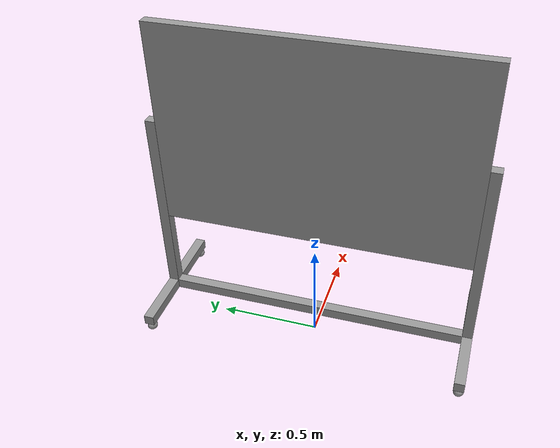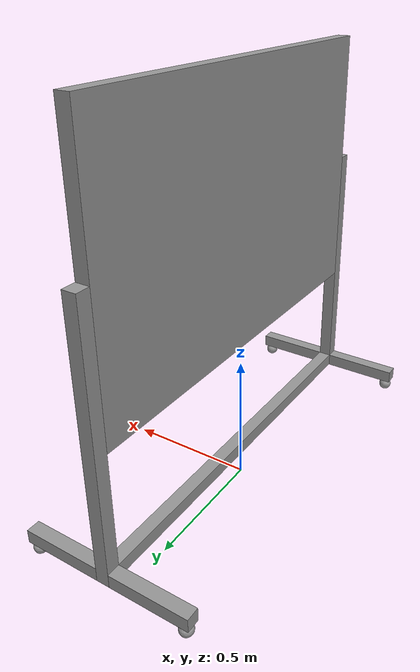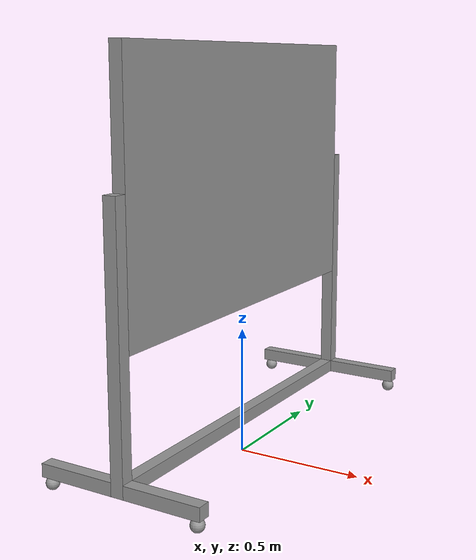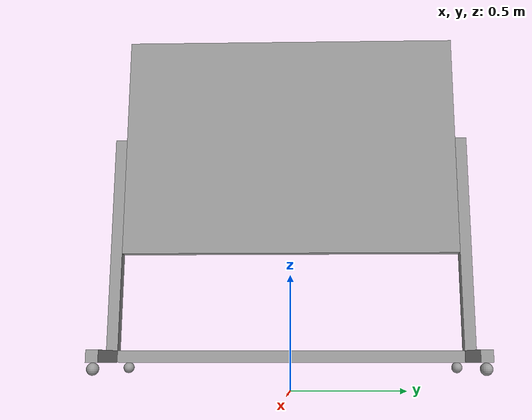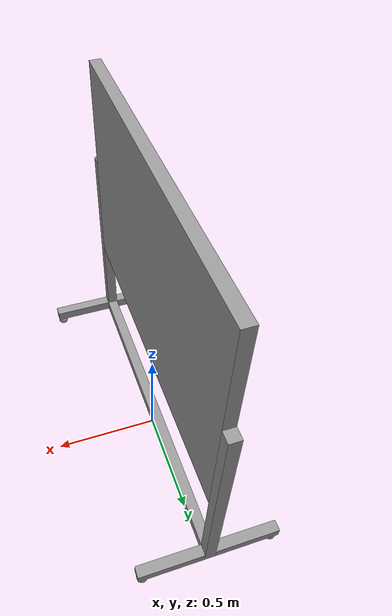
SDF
<?xml version='1.0'?>
<sdf version='1.6'>
  <model name='whiteboardV2'>
    <link name='link_0'>
      <pose frame=''>0 0 1.09583 0 -0 0</pose>
      <inertial>
        <mass>1</mass>
        <inertia>
          <ixx>0.166667</ixx>
          <ixy>0</ixy>
          <ixz>0</ixz>
          <iyy>0.166667</iyy>
          <iyz>0</iyz>
          <izz>0.166667</izz>
        </inertia>
        <pose frame=''>0 0 0 0 -0 0</pose>
      </inertial>
      <gravity>1</gravity>
      <self_collide>0</self_collide>
      <kinematic>0</kinematic>
      <visual name='visual'>
        <pose frame=''>0 0 0 0 -0 0</pose>
        <geometry>
          <box>
            <size>0.05 1.5 1</size>
          </box>
        </geometry>
        <material>
          <lighting>1</lighting>
          <script>
            <uri>file://media/materials/scripts/gazebo.material</uri>
            <name>Gazebo/Grey</name>
          </script>
          <ambient>0.3 0.3 0.3 1</ambient>
          <diffuse>0.7 0.7 0.7 1</diffuse>
          <specular>0.01 0.01 0.01 1</specular>
          <emissive>0 0 0 1</emissive>
          <shader type='vertex'>
            <normal_map>__default__</normal_map>
          </shader>
        </material>
        <cast_shadows>1</cast_shadows>
        <transparency>0</transparency>
      </visual>
      <collision name='collision'>
        <laser_retro>0</laser_retro>
        <max_contacts>10</max_contacts>
        <pose frame=''>0 0 0 0 -0 0</pose>
        <geometry>
          <box>
            <size>0.05 1.5 1</size>
          </box>
        </geometry>
        <surface>
          <friction>
            <ode>
              <mu>1</mu>
              <mu2>1</mu2>
              <fdir1>0 0 0</fdir1>
              <slip1>0</slip1>
              <slip2>0</slip2>
            </ode>
            <torsional>
              <coefficient>1</coefficient>
              <patch_radius>0</patch_radius>
              <surface_radius>0</surface_radius>
              <use_patch_radius>1</use_patch_radius>
              <ode>
                <slip>0</slip>
              </ode>
            </torsional>
          </friction>
          <bounce>
            <restitution_coefficient>0</restitution_coefficient>
            <threshold>1e+06</threshold>
          </bounce>
          <contact>
            <collide_without_contact>0</collide_without_contact>
            <collide_without_contact_bitmask>1</collide_without_contact_bitmask>
            <collide_bitmask>1</collide_bitmask>
            <ode>
              <soft_cfm>0</soft_cfm>
              <soft_erp>0.2</soft_erp>
              <kp>1e+13</kp>
              <kd>1</kd>
              <max_vel>0.01</max_vel>
              <min_depth>0</min_depth>
            </ode>
            <bullet>
              <split_impulse>1</split_impulse>
              <split_impulse_penetration_threshold>-0.01</split_impulse_penetration_threshold>
              <soft_cfm>0</soft_cfm>
              <soft_erp>0.2</soft_erp>
              <kp>1e+13</kp>
              <kd>1</kd>
            </bullet>
          </contact>
        </surface>
      </collision>
    </link>
    <link name='link_1'>
      <pose frame=''>0 0 0.145833 0 -0 0</pose>
      <inertial>
        <mass>1</mass>
        <inertia>
          <ixx>0.166667</ixx>
          <ixy>0</ixy>
          <ixz>0</ixz>
          <iyy>0.166667</iyy>
          <iyz>0</iyz>
          <izz>0.166667</izz>
        </inertia>
        <pose frame=''>0 0 0 0 -0 0</pose>
      </inertial>
      <gravity>1</gravity>
      <self_collide>0</self_collide>
      <kinematic>0</kinematic>
      <visual name='visual'>
        <pose frame=''>0 0 0 0 -0 0</pose>
        <geometry>
          <box>
            <size>0.05 1.5 0.05</size>
          </box>
        </geometry>
        <material>
          <lighting>1</lighting>
          <script>
            <uri>file://media/materials/scripts/gazebo.material</uri>
            <name>Gazebo/Grey</name>
          </script>
          <ambient>0.3 0.3 0.3 1</ambient>
          <diffuse>0.7 0.7 0.7 1</diffuse>
          <specular>0.01 0.01 0.01 1</specular>
          <emissive>0 0 0 1</emissive>
          <shader type='vertex'>
            <normal_map>__default__</normal_map>
          </shader>
        </material>
        <cast_shadows>1</cast_shadows>
        <transparency>0</transparency>
      </visual>
      <collision name='collision'>
        <laser_retro>0</laser_retro>
        <max_contacts>10</max_contacts>
        <pose frame=''>0 0 0 0 -0 0</pose>
        <geometry>
          <box>
            <size>0.05 1.5 0.05</size>
          </box>
        </geometry>
        <surface>
          <friction>
            <ode>
              <mu>1</mu>
              <mu2>1</mu2>
              <fdir1>0 0 0</fdir1>
              <slip1>0</slip1>
              <slip2>0</slip2>
            </ode>
            <torsional>
              <coefficient>1</coefficient>
              <patch_radius>0</patch_radius>
              <surface_radius>0</surface_radius>
              <use_patch_radius>1</use_patch_radius>
              <ode>
                <slip>0</slip>
              </ode>
            </torsional>
          </friction>
          <bounce>
            <restitution_coefficient>0</restitution_coefficient>
            <threshold>1e+06</threshold>
          </bounce>
          <contact>
            <collide_without_contact>0</collide_without_contact>
            <collide_without_contact_bitmask>1</collide_without_contact_bitmask>
            <collide_bitmask>1</collide_bitmask>
            <ode>
              <soft_cfm>0</soft_cfm>
              <soft_erp>0.2</soft_erp>
              <kp>1e+13</kp>
              <kd>1</kd>
              <max_vel>0.01</max_vel>
              <min_depth>0</min_depth>
            </ode>
            <bullet>
              <split_impulse>1</split_impulse>
              <split_impulse_penetration_threshold>-0.01</split_impulse_penetration_threshold>
              <soft_cfm>0</soft_cfm>
              <soft_erp>0.2</soft_erp>
              <kp>1e+13</kp>
              <kd>1</kd>
            </bullet>
          </contact>
        </surface>
      </collision>
    </link>
    <link name='link_2'>
      <pose frame=''>-0.175 -0.775 0.145833 0 -0 0</pose>
      <inertial>
        <mass>1</mass>
        <inertia>
          <ixx>0.166667</ixx>
          <ixy>0</ixy>
          <ixz>0</ixz>
          <iyy>0.166667</iyy>
          <iyz>0</iyz>
          <izz>0.166667</izz>
        </inertia>
        <pose frame=''>0 0 0 0 -0 0</pose>
      </inertial>
      <gravity>1</gravity>
      <self_collide>0</self_collide>
      <kinematic>0</kinematic>
      <visual name='visual'>
        <pose frame=''>0 0 0 0 -0 0</pose>
        <geometry>
          <box>
            <size>0.3 0.05 0.05</size>
          </box>
        </geometry>
        <material>
          <lighting>1</lighting>
          <script>
            <uri>file://media/materials/scripts/gazebo.material</uri>
            <name>Gazebo/Grey</name>
          </script>
          <ambient>0.3 0.3 0.3 1</ambient>
          <diffuse>0.7 0.7 0.7 1</diffuse>
          <specular>0.01 0.01 0.01 1</specular>
          <emissive>0 0 0 1</emissive>
          <shader type='vertex'>
            <normal_map>__default__</normal_map>
          </shader>
        </material>
        <cast_shadows>1</cast_shadows>
        <transparency>0</transparency>
      </visual>
      <collision name='collision'>
        <laser_retro>0</laser_retro>
        <max_contacts>10</max_contacts>
        <pose frame=''>0 0 0 0 -0 0</pose>
        <geometry>
          <box>
            <size>0.3 0.05 0.05</size>
          </box>
        </geometry>
        <surface>
          <friction>
            <ode>
              <mu>1</mu>
              <mu2>1</mu2>
              <fdir1>0 0 0</fdir1>
              <slip1>0</slip1>
              <slip2>0</slip2>
            </ode>
            <torsional>
              <coefficient>1</coefficient>
              <patch_radius>0</patch_radius>
              <surface_radius>0</surface_radius>
              <use_patch_radius>1</use_patch_radius>
              <ode>
                <slip>0</slip>
              </ode>
            </torsional>
          </friction>
          <bounce>
            <restitution_coefficient>0</restitution_coefficient>
            <threshold>1e+06</threshold>
          </bounce>
          <contact>
            <collide_without_contact>0</collide_without_contact>
            <collide_without_contact_bitmask>1</collide_without_contact_bitmask>
            <collide_bitmask>1</collide_bitmask>
            <ode>
              <soft_cfm>0</soft_cfm>
              <soft_erp>0.2</soft_erp>
              <kp>1e+13</kp>
              <kd>1</kd>
              <max_vel>0.01</max_vel>
              <min_depth>0</min_depth>
            </ode>
            <bullet>
              <split_impulse>1</split_impulse>
              <split_impulse_penetration_threshold>-0.01</split_impulse_penetration_threshold>
              <soft_cfm>0</soft_cfm>
              <soft_erp>0.2</soft_erp>
              <kp>1e+13</kp>
              <kd>1</kd>
            </bullet>
          </contact>
        </surface>
      </collision>
    </link>
    <link name='link_2_clone'>
      <pose frame=''>0.175 0.775 0.145833 0 -0 0</pose>
      <inertial>
        <mass>1</mass>
        <inertia>
          <ixx>0.166667</ixx>
          <ixy>0</ixy>
          <ixz>0</ixz>
          <iyy>0.166667</iyy>
          <iyz>0</iyz>
          <izz>0.166667</izz>
        </inertia>
        <pose frame=''>0 0 0 0 -0 0</pose>
      </inertial>
      <self_collide>0</self_collide>
      <kinematic>0</kinematic>
      <gravity>1</gravity>
      <visual name='visual'>
        <pose frame=''>0 0 0 0 -0 0</pose>
        <geometry>
          <box>
            <size>0.3 0.05 0.05</size>
          </box>
        </geometry>
        <material>
          <lighting>1</lighting>
          <script>
            <uri>file://media/materials/scripts/gazebo.material</uri>
            <name>Gazebo/Grey</name>
          </script>
          <ambient>0.3 0.3 0.3 1</ambient>
          <diffuse>0.7 0.7 0.7 1</diffuse>
          <specular>0.01 0.01 0.01 1</specular>
          <emissive>0 0 0 1</emissive>
          <shader type='vertex'>
            <normal_map>__default__</normal_map>
          </shader>
        </material>
        <cast_shadows>1</cast_shadows>
        <transparency>0</transparency>
      </visual>
      <collision name='collision'>
        <laser_retro>0</laser_retro>
        <max_contacts>10</max_contacts>
        <pose frame=''>0 0 0 0 -0 0</pose>
        <geometry>
          <box>
            <size>0.3 0.05 0.05</size>
          </box>
        </geometry>
        <surface>
          <friction>
            <ode>
              <mu>1</mu>
              <mu2>1</mu2>
              <fdir1>0 0 0</fdir1>
              <slip1>0</slip1>
              <slip2>0</slip2>
            </ode>
            <torsional>
              <coefficient>1</coefficient>
              <patch_radius>0</patch_radius>
              <surface_radius>0</surface_radius>
              <use_patch_radius>1</use_patch_radius>
              <ode>
                <slip>0</slip>
              </ode>
            </torsional>
          </friction>
          <bounce>
            <restitution_coefficient>0</restitution_coefficient>
            <threshold>1e+06</threshold>
          </bounce>
          <contact>
            <collide_without_contact>0</collide_without_contact>
            <collide_without_contact_bitmask>1</collide_without_contact_bitmask>
            <collide_bitmask>1</collide_bitmask>
            <ode>
              <soft_cfm>0</soft_cfm>
              <soft_erp>0.2</soft_erp>
              <kp>1e+13</kp>
              <kd>1</kd>
              <max_vel>0.01</max_vel>
              <min_depth>0</min_depth>
            </ode>
            <bullet>
              <split_impulse>1</split_impulse>
              <split_impulse_penetration_threshold>-0.01</split_impulse_penetration_threshold>
              <soft_cfm>0</soft_cfm>
              <soft_erp>0.2</soft_erp>
              <kp>1e+13</kp>
              <kd>1</kd>
            </bullet>
          </contact>
        </surface>
      </collision>
    </link>
    <link name='link_2_clone_clone'>
      <pose frame=''>0.175 -0.775 0.145833 0 -0 0</pose>
      <inertial>
        <mass>1</mass>
        <inertia>
          <ixx>0.166667</ixx>
          <ixy>0</ixy>
          <ixz>0</ixz>
          <iyy>0.166667</iyy>
          <iyz>0</iyz>
          <izz>0.166667</izz>
        </inertia>
        <pose frame=''>0 0 0 0 -0 0</pose>
      </inertial>
      <self_collide>0</self_collide>
      <kinematic>0</kinematic>
      <gravity>1</gravity>
      <visual name='visual'>
        <pose frame=''>0 0 0 0 -0 0</pose>
        <geometry>
          <box>
            <size>0.3 0.05 0.05</size>
          </box>
        </geometry>
        <material>
          <lighting>1</lighting>
          <script>
            <uri>file://media/materials/scripts/gazebo.material</uri>
            <name>Gazebo/Grey</name>
          </script>
          <ambient>0.3 0.3 0.3 1</ambient>
          <diffuse>0.7 0.7 0.7 1</diffuse>
          <specular>0.01 0.01 0.01 1</specular>
          <emissive>0 0 0 1</emissive>
          <shader type='vertex'>
            <normal_map>__default__</normal_map>
          </shader>
        </material>
        <cast_shadows>1</cast_shadows>
        <transparency>0</transparency>
      </visual>
      <collision name='collision'>
        <laser_retro>0</laser_retro>
        <max_contacts>10</max_contacts>
        <pose frame=''>0 0 0 0 -0 0</pose>
        <geometry>
          <box>
            <size>0.3 0.05 0.05</size>
          </box>
        </geometry>
        <surface>
          <friction>
            <ode>
              <mu>1</mu>
              <mu2>1</mu2>
              <fdir1>0 0 0</fdir1>
              <slip1>0</slip1>
              <slip2>0</slip2>
            </ode>
            <torsional>
              <coefficient>1</coefficient>
              <patch_radius>0</patch_radius>
              <surface_radius>0</surface_radius>
              <use_patch_radius>1</use_patch_radius>
              <ode>
                <slip>0</slip>
              </ode>
            </torsional>
          </friction>
          <bounce>
            <restitution_coefficient>0</restitution_coefficient>
            <threshold>1e+06</threshold>
          </bounce>
          <contact>
            <collide_without_contact>0</collide_without_contact>
            <collide_without_contact_bitmask>1</collide_without_contact_bitmask>
            <collide_bitmask>1</collide_bitmask>
            <ode>
              <soft_cfm>0</soft_cfm>
              <soft_erp>0.2</soft_erp>
              <kp>1e+13</kp>
              <kd>1</kd>
              <max_vel>0.01</max_vel>
              <min_depth>0</min_depth>
            </ode>
            <bullet>
              <split_impulse>1</split_impulse>
              <split_impulse_penetration_threshold>-0.01</split_impulse_penetration_threshold>
              <soft_cfm>0</soft_cfm>
              <soft_erp>0.2</soft_erp>
              <kp>1e+13</kp>
              <kd>1</kd>
            </bullet>
          </contact>
        </surface>
      </collision>
    </link>
    <link name='link_2_clone_clone_clone'>
      <pose frame=''>-0.175 0.775 0.145833 0 -0 0</pose>
      <inertial>
        <mass>1</mass>
        <inertia>
          <ixx>0.166667</ixx>
          <ixy>0</ixy>
          <ixz>0</ixz>
          <iyy>0.166667</iyy>
          <iyz>0</iyz>
          <izz>0.166667</izz>
        </inertia>
        <pose frame=''>0 0 0 0 -0 0</pose>
      </inertial>
      <self_collide>0</self_collide>
      <kinematic>0</kinematic>
      <gravity>1</gravity>
      <visual name='visual'>
        <pose frame=''>0 0 0 0 -0 0</pose>
        <geometry>
          <box>
            <size>0.3 0.05 0.05</size>
          </box>
        </geometry>
        <material>
          <lighting>1</lighting>
          <script>
            <uri>file://media/materials/scripts/gazebo.material</uri>
            <name>Gazebo/Grey</name>
          </script>
          <ambient>0.3 0.3 0.3 1</ambient>
          <diffuse>0.7 0.7 0.7 1</diffuse>
          <specular>0.01 0.01 0.01 1</specular>
          <emissive>0 0 0 1</emissive>
          <shader type='vertex'>
            <normal_map>__default__</normal_map>
          </shader>
        </material>
        <cast_shadows>1</cast_shadows>
        <transparency>0</transparency>
      </visual>
      <collision name='collision'>
        <laser_retro>0</laser_retro>
        <max_contacts>10</max_contacts>
        <pose frame=''>0 0 0 0 -0 0</pose>
        <geometry>
          <box>
            <size>0.3 0.05 0.05</size>
          </box>
        </geometry>
        <surface>
          <friction>
            <ode>
              <mu>1</mu>
              <mu2>1</mu2>
              <fdir1>0 0 0</fdir1>
              <slip1>0</slip1>
              <slip2>0</slip2>
            </ode>
            <torsional>
              <coefficient>1</coefficient>
              <patch_radius>0</patch_radius>
              <surface_radius>0</surface_radius>
              <use_patch_radius>1</use_patch_radius>
              <ode>
                <slip>0</slip>
              </ode>
            </torsional>
          </friction>
          <bounce>
            <restitution_coefficient>0</restitution_coefficient>
            <threshold>1e+06</threshold>
          </bounce>
          <contact>
            <collide_without_contact>0</collide_without_contact>
            <collide_without_contact_bitmask>1</collide_without_contact_bitmask>
            <collide_bitmask>1</collide_bitmask>
            <ode>
              <soft_cfm>0</soft_cfm>
              <soft_erp>0.2</soft_erp>
              <kp>1e+13</kp>
              <kd>1</kd>
              <max_vel>0.01</max_vel>
              <min_depth>0</min_depth>
            </ode>
            <bullet>
              <split_impulse>1</split_impulse>
              <split_impulse_penetration_threshold>-0.01</split_impulse_penetration_threshold>
              <soft_cfm>0</soft_cfm>
              <soft_erp>0.2</soft_erp>
              <kp>1e+13</kp>
              <kd>1</kd>
            </bullet>
          </contact>
        </surface>
      </collision>
    </link>
    <link name='link_3'>
      <pose frame=''>0 -0.775 0.620833 0 -0 0</pose>
      <inertial>
        <mass>1</mass>
        <inertia>
          <ixx>0.166667</ixx>
          <ixy>0</ixy>
          <ixz>0</ixz>
          <iyy>0.166667</iyy>
          <iyz>0</iyz>
          <izz>0.166667</izz>
        </inertia>
        <pose frame=''>0 0 0 0 -0 0</pose>
      </inertial>
      <gravity>1</gravity>
      <self_collide>0</self_collide>
      <kinematic>0</kinematic>
      <visual name='visual'>
        <pose frame=''>0 0 0 0 -0 0</pose>
        <geometry>
          <box>
            <size>0.05 0.05 1</size>
          </box>
        </geometry>
        <material>
          <lighting>1</lighting>
          <script>
            <uri>file://media/materials/scripts/gazebo.material</uri>
            <name>Gazebo/Grey</name>
          </script>
          <ambient>0.3 0.3 0.3 1</ambient>
          <diffuse>0.7 0.7 0.7 1</diffuse>
          <specular>0.01 0.01 0.01 1</specular>
          <emissive>0 0 0 1</emissive>
          <shader type='vertex'>
            <normal_map>__default__</normal_map>
          </shader>
        </material>
        <cast_shadows>1</cast_shadows>
        <transparency>0</transparency>
      </visual>
      <collision name='collision'>
        <laser_retro>0</laser_retro>
        <max_contacts>10</max_contacts>
        <pose frame=''>0 0 0 0 -0 0</pose>
        <geometry>
          <box>
            <size>0.05 0.05 1</size>
          </box>
        </geometry>
        <surface>
          <friction>
            <ode>
              <mu>1</mu>
              <mu2>1</mu2>
              <fdir1>0 0 0</fdir1>
              <slip1>0</slip1>
              <slip2>0</slip2>
            </ode>
            <torsional>
              <coefficient>1</coefficient>
              <patch_radius>0</patch_radius>
              <surface_radius>0</surface_radius>
              <use_patch_radius>1</use_patch_radius>
              <ode>
                <slip>0</slip>
              </ode>
            </torsional>
          </friction>
          <bounce>
            <restitution_coefficient>0</restitution_coefficient>
            <threshold>1e+06</threshold>
          </bounce>
          <contact>
            <collide_without_contact>0</collide_without_contact>
            <collide_without_contact_bitmask>1</collide_without_contact_bitmask>
            <collide_bitmask>1</collide_bitmask>
            <ode>
              <soft_cfm>0</soft_cfm>
              <soft_erp>0.2</soft_erp>
              <kp>1e+13</kp>
              <kd>1</kd>
              <max_vel>0.01</max_vel>
              <min_depth>0</min_depth>
            </ode>
            <bullet>
              <split_impulse>1</split_impulse>
              <split_impulse_penetration_threshold>-0.01</split_impulse_penetration_threshold>
              <soft_cfm>0</soft_cfm>
              <soft_erp>0.2</soft_erp>
              <kp>1e+13</kp>
              <kd>1</kd>
            </bullet>
          </contact>
        </surface>
      </collision>
    </link>
    <link name='link_3_clone'>
      <pose frame=''>0 0.775 0.620833 0 -0 0</pose>
      <inertial>
        <mass>1</mass>
        <inertia>
          <ixx>0.166667</ixx>
          <ixy>0</ixy>
          <ixz>0</ixz>
          <iyy>0.166667</iyy>
          <iyz>0</iyz>
          <izz>0.166667</izz>
        </inertia>
        <pose frame=''>0 0 0 0 -0 0</pose>
      </inertial>
      <self_collide>0</self_collide>
      <kinematic>0</kinematic>
      <visual name='visual'>
        <pose frame=''>0 0 0 0 -0 0</pose>
        <geometry>
          <box>
            <size>0.05 0.05 1</size>
          </box>
        </geometry>
        <material>
          <lighting>1</lighting>
          <script>
            <uri>file://media/materials/scripts/gazebo.material</uri>
            <name>Gazebo/Grey</name>
          </script>
          <ambient>0.3 0.3 0.3 1</ambient>
          <diffuse>0.7 0.7 0.7 1</diffuse>
          <specular>0.01 0.01 0.01 1</specular>
          <emissive>0 0 0 1</emissive>
          <shader type='vertex'>
            <normal_map>__default__</normal_map>
          </shader>
        </material>
        <cast_shadows>1</cast_shadows>
        <transparency>0</transparency>
      </visual>
      <collision name='collision'>
        <laser_retro>0</laser_retro>
        <max_contacts>10</max_contacts>
        <pose frame=''>0 0 0 0 -0 0</pose>
        <geometry>
          <box>
            <size>0.05 0.05 1</size>
          </box>
        </geometry>
        <surface>
          <friction>
            <ode>
              <mu>1</mu>
              <mu2>1</mu2>
              <fdir1>0 0 0</fdir1>
              <slip1>0</slip1>
              <slip2>0</slip2>
            </ode>
            <torsional>
              <coefficient>1</coefficient>
              <patch_radius>0</patch_radius>
              <surface_radius>0</surface_radius>
              <use_patch_radius>1</use_patch_radius>
              <ode>
                <slip>0</slip>
              </ode>
            </torsional>
          </friction>
          <bounce>
            <restitution_coefficient>0</restitution_coefficient>
            <threshold>1e+06</threshold>
          </bounce>
          <contact>
            <collide_without_contact>0</collide_without_contact>
            <collide_without_contact_bitmask>1</collide_without_contact_bitmask>
            <collide_bitmask>1</collide_bitmask>
            <ode>
              <soft_cfm>0</soft_cfm>
              <soft_erp>0.2</soft_erp>
              <kp>1e+13</kp>
              <kd>1</kd>
              <max_vel>0.01</max_vel>
              <min_depth>0</min_depth>
            </ode>
            <bullet>
              <split_impulse>1</split_impulse>
              <split_impulse_penetration_threshold>-0.01</split_impulse_penetration_threshold>
              <soft_cfm>0</soft_cfm>
              <soft_erp>0.2</soft_erp>
              <kp>1e+13</kp>
              <kd>1</kd>
            </bullet>
          </contact>
        </surface>
      </collision>
    </link>
    <link name='link_4'>
      <pose frame=''>-0.3 -0.775 0.095833 0 -0 0</pose>
      <inertial>
        <mass>1</mass>
        <inertia>
          <ixx>0.1</ixx>
          <ixy>0</ixy>
          <ixz>0</ixz>
          <iyy>0.1</iyy>
          <iyz>0</iyz>
          <izz>0.1</izz>
        </inertia>
        <pose frame=''>0 0 0 0 -0 0</pose>
      </inertial>
      <gravity>1</gravity>
      <self_collide>0</self_collide>
      <kinematic>0</kinematic>
      <visual name='visual'>
        <pose frame=''>0 0 0 0 -0 0</pose>
        <geometry>
          <sphere>
            <radius>0.025</radius>
          </sphere>
        </geometry>
        <material>
          <lighting>1</lighting>
          <script>
            <uri>file://media/materials/scripts/gazebo.material</uri>
            <name>Gazebo/Grey</name>
          </script>
          <ambient>0.3 0.3 0.3 1</ambient>
          <diffuse>0.7 0.7 0.7 1</diffuse>
          <specular>0.01 0.01 0.01 1</specular>
          <emissive>0 0 0 1</emissive>
          <shader type='vertex'>
            <normal_map>__default__</normal_map>
          </shader>
        </material>
        <cast_shadows>1</cast_shadows>
        <transparency>0</transparency>
      </visual>
      <collision name='collision'>
        <laser_retro>0</laser_retro>
        <max_contacts>10</max_contacts>
        <pose frame=''>0 0 0 0 -0 0</pose>
        <geometry>
          <sphere>
            <radius>0.025</radius>
          </sphere>
        </geometry>
        <surface>
          <friction>
            <ode>
              <mu>1</mu>
              <mu2>1</mu2>
              <fdir1>0 0 0</fdir1>
              <slip1>0</slip1>
              <slip2>0</slip2>
            </ode>
            <torsional>
              <coefficient>1</coefficient>
              <patch_radius>0</patch_radius>
              <surface_radius>0</surface_radius>
              <use_patch_radius>1</use_patch_radius>
              <ode>
                <slip>0</slip>
              </ode>
            </torsional>
          </friction>
          <bounce>
            <restitution_coefficient>0</restitution_coefficient>
            <threshold>1e+06</threshold>
          </bounce>
          <contact>
            <collide_without_contact>0</collide_without_contact>
            <collide_without_contact_bitmask>1</collide_without_contact_bitmask>
            <collide_bitmask>1</collide_bitmask>
            <ode>
              <soft_cfm>0</soft_cfm>
              <soft_erp>0.2</soft_erp>
              <kp>1e+13</kp>
              <kd>1</kd>
              <max_vel>0.01</max_vel>
              <min_depth>0</min_depth>
            </ode>
            <bullet>
              <split_impulse>1</split_impulse>
              <split_impulse_penetration_threshold>-0.01</split_impulse_penetration_threshold>
              <soft_cfm>0</soft_cfm>
              <soft_erp>0.2</soft_erp>
              <kp>1e+13</kp>
              <kd>1</kd>
            </bullet>
          </contact>
        </surface>
      </collision>
    </link>
    <link name='link_4_clone'>
      <pose frame=''>0.3 0.775 0.095833 0 -0 0</pose>
      <inertial>
        <mass>1</mass>
        <inertia>
          <ixx>0.1</ixx>
          <ixy>0</ixy>
          <ixz>0</ixz>
          <iyy>0.1</iyy>
          <iyz>0</iyz>
          <izz>0.1</izz>
        </inertia>
        <pose frame=''>0 0 0 0 -0 0</pose>
      </inertial>
      <self_collide>0</self_collide>
      <kinematic>0</kinematic>
      <visual name='visual'>
        <pose frame=''>0 0 0 0 -0 0</pose>
        <geometry>
          <sphere>
            <radius>0.025</radius>
          </sphere>
        </geometry>
        <material>
          <lighting>1</lighting>
          <script>
            <uri>file://media/materials/scripts/gazebo.material</uri>
            <name>Gazebo/Grey</name>
          </script>
          <ambient>0.3 0.3 0.3 1</ambient>
          <diffuse>0.7 0.7 0.7 1</diffuse>
          <specular>0.01 0.01 0.01 1</specular>
          <emissive>0 0 0 1</emissive>
          <shader type='vertex'>
            <normal_map>__default__</normal_map>
          </shader>
        </material>
        <cast_shadows>1</cast_shadows>
        <transparency>0</transparency>
      </visual>
      <collision name='collision'>
        <laser_retro>0</laser_retro>
        <max_contacts>10</max_contacts>
        <pose frame=''>0 0 0 0 -0 0</pose>
        <geometry>
          <sphere>
            <radius>0.025</radius>
          </sphere>
        </geometry>
        <surface>
          <friction>
            <ode>
              <mu>1</mu>
              <mu2>1</mu2>
              <fdir1>0 0 0</fdir1>
              <slip1>0</slip1>
              <slip2>0</slip2>
            </ode>
            <torsional>
              <coefficient>1</coefficient>
              <patch_radius>0</patch_radius>
              <surface_radius>0</surface_radius>
              <use_patch_radius>1</use_patch_radius>
              <ode>
                <slip>0</slip>
              </ode>
            </torsional>
          </friction>
          <bounce>
            <restitution_coefficient>0</restitution_coefficient>
            <threshold>1e+06</threshold>
          </bounce>
          <contact>
            <collide_without_contact>0</collide_without_contact>
            <collide_without_contact_bitmask>1</collide_without_contact_bitmask>
            <collide_bitmask>1</collide_bitmask>
            <ode>
              <soft_cfm>0</soft_cfm>
              <soft_erp>0.2</soft_erp>
              <kp>1e+13</kp>
              <kd>1</kd>
              <max_vel>0.01</max_vel>
              <min_depth>0</min_depth>
            </ode>
            <bullet>
              <split_impulse>1</split_impulse>
              <split_impulse_penetration_threshold>-0.01</split_impulse_penetration_threshold>
              <soft_cfm>0</soft_cfm>
              <soft_erp>0.2</soft_erp>
              <kp>1e+13</kp>
              <kd>1</kd>
            </bullet>
          </contact>
        </surface>
      </collision>
    </link>
    <link name='link_4_clone_clone'>
      <pose frame=''>-0.3 0.775 0.095833 0 -0 0</pose>
      <inertial>
        <mass>1</mass>
        <inertia>
          <ixx>0.1</ixx>
          <ixy>0</ixy>
          <ixz>0</ixz>
          <iyy>0.1</iyy>
          <iyz>0</iyz>
          <izz>0.1</izz>
        </inertia>
        <pose frame=''>0 0 0 0 -0 0</pose>
      </inertial>
      <self_collide>0</self_collide>
      <kinematic>0</kinematic>
      <visual name='visual'>
        <pose frame=''>0 0 0 0 -0 0</pose>
        <geometry>
          <sphere>
            <radius>0.025</radius>
          </sphere>
        </geometry>
        <material>
          <lighting>1</lighting>
          <script>
            <uri>file://media/materials/scripts/gazebo.material</uri>
            <name>Gazebo/Grey</name>
          </script>
          <ambient>0.3 0.3 0.3 1</ambient>
          <diffuse>0.7 0.7 0.7 1</diffuse>
          <specular>0.01 0.01 0.01 1</specular>
          <emissive>0 0 0 1</emissive>
          <shader type='vertex'>
            <normal_map>__default__</normal_map>
          </shader>
        </material>
        <cast_shadows>1</cast_shadows>
        <transparency>0</transparency>
      </visual>
      <collision name='collision'>
        <laser_retro>0</laser_retro>
        <max_contacts>10</max_contacts>
        <pose frame=''>0 0 0 0 -0 0</pose>
        <geometry>
          <sphere>
            <radius>0.025</radius>
          </sphere>
        </geometry>
        <surface>
          <friction>
            <ode>
              <mu>1</mu>
              <mu2>1</mu2>
              <fdir1>0 0 0</fdir1>
              <slip1>0</slip1>
              <slip2>0</slip2>
            </ode>
            <torsional>
              <coefficient>1</coefficient>
              <patch_radius>0</patch_radius>
              <surface_radius>0</surface_radius>
              <use_patch_radius>1</use_patch_radius>
              <ode>
                <slip>0</slip>
              </ode>
            </torsional>
          </friction>
          <bounce>
            <restitution_coefficient>0</restitution_coefficient>
            <threshold>1e+06</threshold>
          </bounce>
          <contact>
            <collide_without_contact>0</collide_without_contact>
            <collide_without_contact_bitmask>1</collide_without_contact_bitmask>
            <collide_bitmask>1</collide_bitmask>
            <ode>
              <soft_cfm>0</soft_cfm>
              <soft_erp>0.2</soft_erp>
              <kp>1e+13</kp>
              <kd>1</kd>
              <max_vel>0.01</max_vel>
              <min_depth>0</min_depth>
            </ode>
            <bullet>
              <split_impulse>1</split_impulse>
              <split_impulse_penetration_threshold>-0.01</split_impulse_penetration_threshold>
              <soft_cfm>0</soft_cfm>
              <soft_erp>0.2</soft_erp>
              <kp>1e+13</kp>
              <kd>1</kd>
            </bullet>
          </contact>
        </surface>
      </collision>
    </link>
    <link name='link_4_clone_clone_clone'>
      <pose frame=''>0.3 -0.775 0.095833 0 -0 0</pose>
      <inertial>
        <mass>1</mass>
        <inertia>
          <ixx>0.1</ixx>
          <ixy>0</ixy>
          <ixz>0</ixz>
          <iyy>0.1</iyy>
          <iyz>0</iyz>
          <izz>0.1</izz>
        </inertia>
        <pose frame=''>0 0 0 0 -0 0</pose>
      </inertial>
      <self_collide>0</self_collide>
      <kinematic>0</kinematic>
      <gravity>1</gravity>
      <visual name='visual'>
        <pose frame=''>0 0 0 0 -0 0</pose>
        <geometry>
          <sphere>
            <radius>0.025</radius>
          </sphere>
        </geometry>
        <material>
          <lighting>1</lighting>
          <script>
            <uri>file://media/materials/scripts/gazebo.material</uri>
            <name>Gazebo/Grey</name>
          </script>
          <ambient>0.3 0.3 0.3 1</ambient>
          <diffuse>0.7 0.7 0.7 1</diffuse>
          <specular>0.01 0.01 0.01 1</specular>
          <emissive>0 0 0 1</emissive>
          <shader type='vertex'>
            <normal_map>__default__</normal_map>
          </shader>
        </material>
        <cast_shadows>1</cast_shadows>
        <transparency>0</transparency>
      </visual>
      <collision name='collision'>
        <laser_retro>0</laser_retro>
        <max_contacts>10</max_contacts>
        <pose frame=''>0 0 0 0 -0 0</pose>
        <geometry>
          <sphere>
            <radius>0.025</radius>
          </sphere>
        </geometry>
        <surface>
          <friction>
            <ode>
              <mu>1</mu>
              <mu2>1</mu2>
              <fdir1>0 0 0</fdir1>
              <slip1>0</slip1>
              <slip2>0</slip2>
            </ode>
            <torsional>
              <coefficient>1</coefficient>
              <patch_radius>0</patch_radius>
              <surface_radius>0</surface_radius>
              <use_patch_radius>1</use_patch_radius>
              <ode>
                <slip>0</slip>
              </ode>
            </torsional>
          </friction>
          <bounce>
            <restitution_coefficient>0</restitution_coefficient>
            <threshold>1e+06</threshold>
          </bounce>
          <contact>
            <collide_without_contact>0</collide_without_contact>
            <collide_without_contact_bitmask>1</collide_without_contact_bitmask>
            <collide_bitmask>1</collide_bitmask>
            <ode>
              <soft_cfm>0</soft_cfm>
              <soft_erp>0.2</soft_erp>
              <kp>1e+13</kp>
              <kd>1</kd>
              <max_vel>0.01</max_vel>
              <min_depth>0</min_depth>
            </ode>
            <bullet>
              <split_impulse>1</split_impulse>
              <split_impulse_penetration_threshold>-0.01</split_impulse_penetration_threshold>
              <soft_cfm>0</soft_cfm>
              <soft_erp>0.2</soft_erp>
              <kp>1e+13</kp>
              <kd>1</kd>
            </bullet>
          </contact>
        </surface>
      </collision>
    </link>
    <joint name='link_1_JOINT_0' type='fixed'>
      <parent>link_1</parent>
      <child>link_3</child>
      <pose frame=''>0 0 0 0 -0 0</pose>
      <physics>
        <ode>
          <limit>
            <cfm>0</cfm>
            <erp>0.2</erp>
          </limit>
          <suspension>
            <cfm>0</cfm>
            <erp>0.2</erp>
          </suspension>
        </ode>
      </physics>
    </joint>
    <joint name='link_1_JOINT_3' type='fixed'>
      <parent>link_1</parent>
      <child>link_3_clone</child>
      <pose frame=''>0 0 0 0 -0 0</pose>
      <physics>
        <ode>
          <limit>
            <cfm>0</cfm>
            <erp>0.2</erp>
          </limit>
          <suspension>
            <cfm>0</cfm>
            <erp>0.2</erp>
          </suspension>
        </ode>
      </physics>
    </joint>
    <joint name='link_2_JOINT_12' type='ball'>
      <parent>link_2</parent>
      <child>link_4</child>
      <pose frame=''>0 0 0 0 -0 0</pose>
      <physics>
        <ode>
          <limit>
            <cfm>0</cfm>
            <erp>0.2</erp>
          </limit>
          <suspension>
            <cfm>0</cfm>
            <erp>0.2</erp>
          </suspension>
        </ode>
      </physics>
    </joint>
    <joint name='link_2_clone_JOINT_10' type='ball'>
      <parent>link_2_clone</parent>
      <child>link_4_clone</child>
      <pose frame=''>0 0 0 0 -0 0</pose>
      <physics>
        <ode>
          <limit>
            <cfm>0</cfm>
            <erp>0.2</erp>
          </limit>
          <suspension>
            <cfm>0</cfm>
            <erp>0.2</erp>
          </suspension>
        </ode>
      </physics>
    </joint>
    <joint name='link_2_clone_clone_JOINT_9' type='ball'>
      <parent>link_2_clone_clone</parent>
      <child>link_4_clone_clone_clone</child>
      <pose frame=''>0 0 0 0 -0 0</pose>
      <physics>
        <ode>
          <limit>
            <cfm>0</cfm>
            <erp>0.2</erp>
          </limit>
          <suspension>
            <cfm>0</cfm>
            <erp>0.2</erp>
          </suspension>
        </ode>
      </physics>
    </joint>
    <joint name='link_2_clone_clone_clone_JOINT_11' type='ball'>
      <parent>link_2_clone_clone_clone</parent>
      <child>link_4_clone_clone</child>
      <pose frame=''>0 0 0 0 -0 0</pose>
      <physics>
        <ode>
          <limit>
            <cfm>0</cfm>
            <erp>0.2</erp>
          </limit>
          <suspension>
            <cfm>0</cfm>
            <erp>0.2</erp>
          </suspension>
        </ode>
      </physics>
    </joint>
    <joint name='link_3_JOINT_1' type='fixed'>
      <parent>link_3</parent>
      <child>link_2_clone_clone</child>
      <pose frame=''>0 0 0 0 -0 0</pose>
      <physics>
        <ode>
          <limit>
            <cfm>0</cfm>
            <erp>0.2</erp>
          </limit>
          <suspension>
            <cfm>0</cfm>
            <erp>0.2</erp>
          </suspension>
        </ode>
      </physics>
    </joint>
    <joint name='link_3_JOINT_2' type='fixed'>
      <parent>link_3</parent>
      <child>link_2</child>
      <pose frame=''>0 0 0 0 -0 0</pose>
      <physics>
        <ode>
          <limit>
            <cfm>0</cfm>
            <erp>0.2</erp>
          </limit>
          <suspension>
            <cfm>0</cfm>
            <erp>0.2</erp>
          </suspension>
        </ode>
      </physics>
    </joint>
    <joint name='link_3_JOINT_6' type='fixed'>
      <parent>link_3</parent>
      <child>link_0</child>
      <pose frame=''>0 0 0 0 -0 0</pose>
      <physics>
        <ode>
          <limit>
            <cfm>0</cfm>
            <erp>0.2</erp>
          </limit>
          <suspension>
            <cfm>0</cfm>
            <erp>0.2</erp>
          </suspension>
        </ode>
      </physics>
    </joint>
    <joint name='link_3_clone_JOINT_4' type='fixed'>
      <parent>link_3_clone</parent>
      <child>link_2_clone</child>
      <pose frame=''>0 0 0 0 -0 0</pose>
      <physics>
        <ode>
          <limit>
            <cfm>0</cfm>
            <erp>0.2</erp>
          </limit>
          <suspension>
            <cfm>0</cfm>
            <erp>0.2</erp>
          </suspension>
        </ode>
      </physics>
    </joint>
    <joint name='link_3_clone_JOINT_5' type='fixed'>
      <parent>link_3_clone</parent>
      <child>link_2_clone_clone_clone</child>
      <pose frame=''>0 0 0 0 -0 0</pose>
      <physics>
        <ode>
          <limit>
            <cfm>0</cfm>
            <erp>0.2</erp>
          </limit>
          <suspension>
            <cfm>0</cfm>
            <erp>0.2</erp>
          </suspension>
        </ode>
      </physics>
    </joint>
    <joint name='link_3_clone_JOINT_7' type='fixed'>
      <parent>link_3_clone</parent>
      <child>link_0</child>
      <pose frame=''>0 0 0 0 -0 0</pose>
      <physics>
        <ode>
          <limit>
            <cfm>0</cfm>
            <erp>0.2</erp>
          </limit>
          <suspension>
            <cfm>0</cfm>
            <erp>0.2</erp>
          </suspension>
        </ode>
      </physics>
    </joint>
    <static>0</static>
    <allow_auto_disable>1</allow_auto_disable>
  </model>
</sdf>
